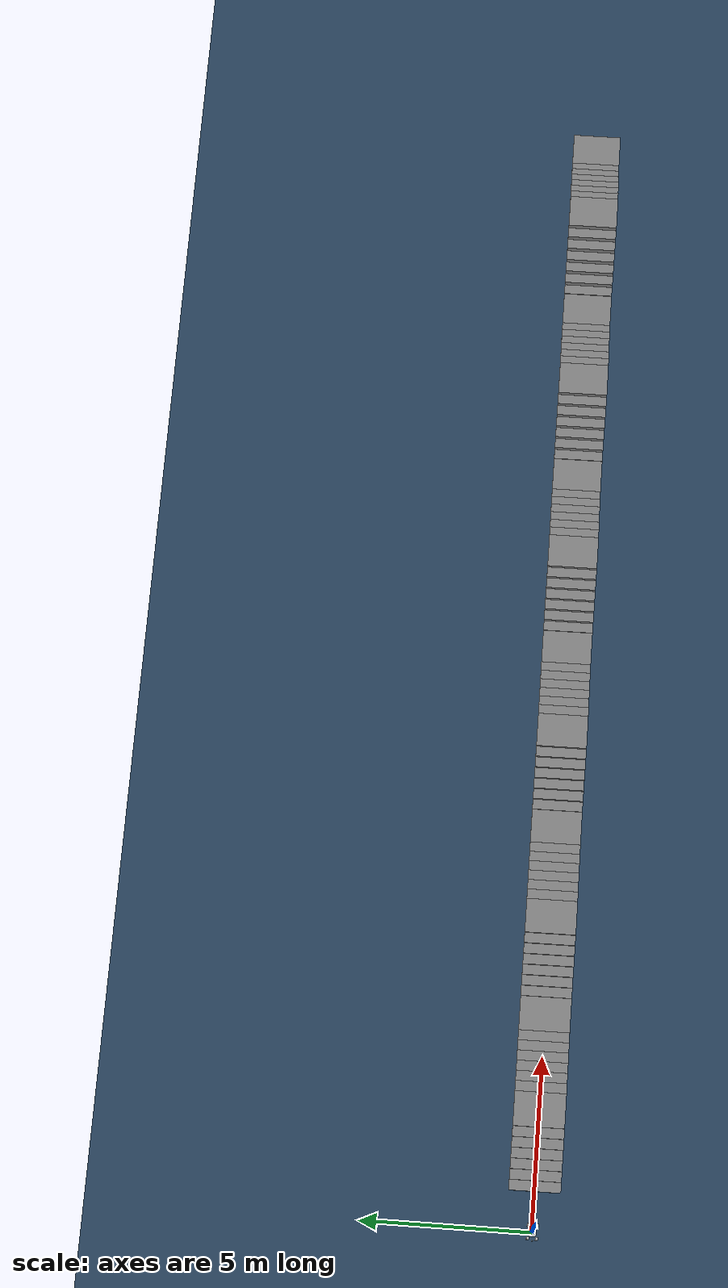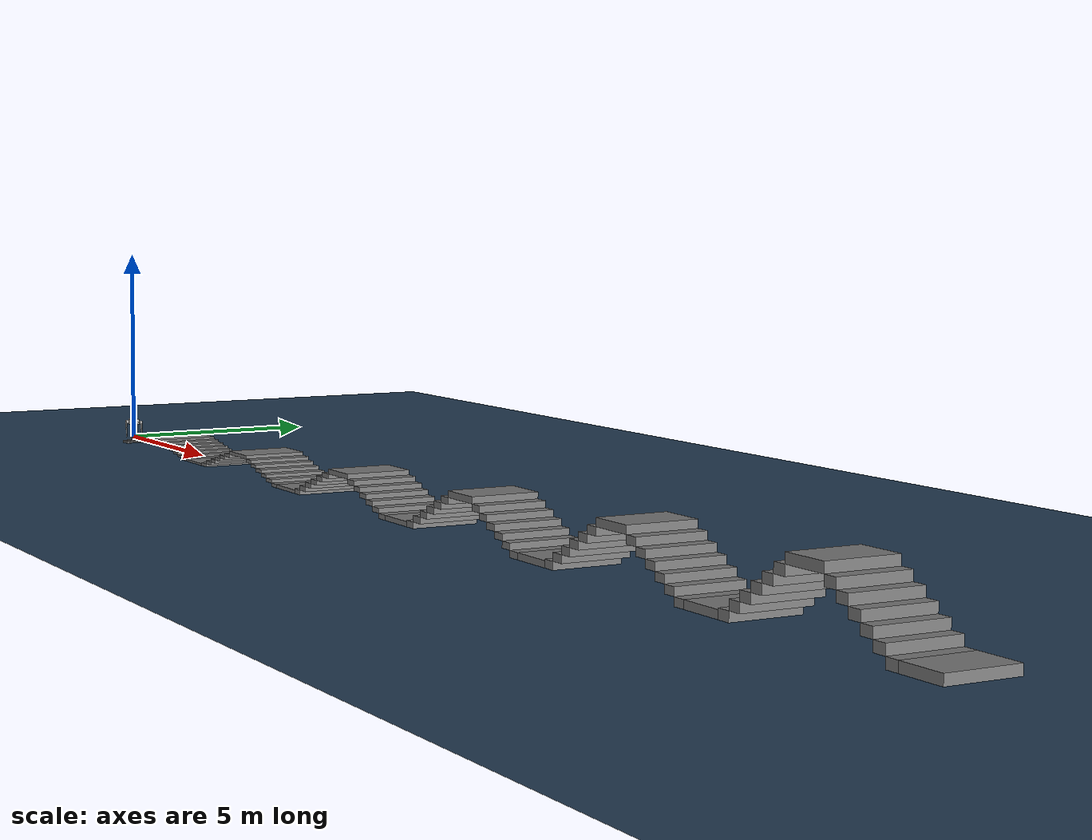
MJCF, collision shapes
<mujoco model="stairs">
  <include file="legbot.xml"/>

  <statistic center="0 0 0.1" extent="0.8"/>

  <visual>
    <headlight diffuse="0.6 0.6 0.6" ambient="0.3 0.3 0.3" specular="0 0 0"/>
    <rgba haze="0.15 0.25 0.35 1"/>
    <global azimuth="-130" elevation="-20"/>
  </visual>
  <default>
    <geom friction="1.0 0.005 0.0001" contype="1" conaffinity="1" condim="3" solref="0.02 1"/>
  </default>

  <asset>
    <texture type="skybox" builtin="gradient" rgb1="0.3 0.5 0.7" rgb2="0 0 0" width="512" height="3072"/>
    <texture type="2d" name="groundplane" builtin="checker" mark="edge" rgb1="0.2 0.3 0.4" rgb2="0.1 0.2 0.3" markrgb="0.8 0.8 0.8" width="300" height="300"/>
    <material name="groundplane" texture="groundplane" texuniform="true" texrepeat="5 5" reflectance="0.2"/>
  </asset>

  <worldbody>
    <light pos="0 0 1.5" dir="0 0 -1" directional="true"/>
    <geom name="floor" size="0 0 0.05" type="plane" material="groundplane"
          friction="1.0 0.005 0.0001" contype="1" conaffinity="1" condim="3" solref="0.02 1"/>

    <!-- Staircase: progressively steeper sections (2.5cm → 10cm step height) -->
    <geom pos="1.3 0.0 0.025" type="box" size="0.15 0.75 0.025"/>
    <geom pos="1.6 0.0 0.075" type="box" size="0.15 0.75 0.025"/>
    <geom pos="1.9 0.0 0.125" type="box" size="0.15 0.75 0.025"/>
    <geom pos="2.2 0.0 0.175" type="box" size="0.15 0.75 0.025"/>
    <geom pos="2.5 0.0 0.225" type="box" size="0.15 0.75 0.025"/>
    <geom pos="2.8 0.0 0.275" type="box" size="0.15 0.75 0.025"/>
    <geom pos="3.45 0.0 0.325" type="box" size="0.5 0.75 0.025"/>
    <geom pos="4.1 0.0 0.275" type="box" size="0.15 0.75 0.025"/>
    <geom pos="4.4 0.0 0.225" type="box" size="0.15 0.75 0.025"/>
    <geom pos="4.7 0.0 0.175" type="box" size="0.15 0.75 0.025"/>
    <geom pos="5.0 0.0 0.125" type="box" size="0.15 0.75 0.025"/>
    <geom pos="5.3 0.0 0.075" type="box" size="0.15 0.75 0.025"/>
    <geom pos="5.6 0.0 0.025" type="box" size="0.15 0.75 0.025"/>
    <geom pos="6.25 0.0 0.025" type="box" size="0.5 0.75 0.025"/>

    <!-- 4cm steps -->
    <geom pos="6.9 0.0 0.04" type="box" size="0.15 0.75 0.04"/>
    <geom pos="7.2 0.0 0.12" type="box" size="0.15 0.75 0.04"/>
    <geom pos="7.5 0.0 0.2" type="box" size="0.15 0.75 0.04"/>
    <geom pos="7.8 0.0 0.28" type="box" size="0.15 0.75 0.04"/>
    <geom pos="8.1 0.0 0.36" type="box" size="0.15 0.75 0.04"/>
    <geom pos="8.4 0.0 0.44" type="box" size="0.15 0.75 0.04"/>
    <geom pos="9.05 0.0 0.52" type="box" size="0.5 0.75 0.04"/>
    <geom pos="9.7 0.0 0.44" type="box" size="0.15 0.75 0.04"/>
    <geom pos="10.0 0.0 0.36" type="box" size="0.15 0.75 0.04"/>
    <geom pos="10.3 0.0 0.28" type="box" size="0.15 0.75 0.04"/>
    <geom pos="10.6 0.0 0.2" type="box" size="0.15 0.75 0.04"/>
    <geom pos="10.9 0.0 0.12" type="box" size="0.15 0.75 0.04"/>
    <geom pos="11.2 0.0 0.04" type="box" size="0.15 0.75 0.04"/>
    <geom pos="11.85 0.0 0.04" type="box" size="0.5 0.75 0.04"/>

    <!-- 5.5cm steps -->
    <geom pos="12.5 0.0 0.055" type="box" size="0.15 0.75 0.055"/>
    <geom pos="12.8 0.0 0.165" type="box" size="0.15 0.75 0.055"/>
    <geom pos="13.1 0.0 0.275" type="box" size="0.15 0.75 0.055"/>
    <geom pos="13.4 0.0 0.385" type="box" size="0.15 0.75 0.055"/>
    <geom pos="13.7 0.0 0.495" type="box" size="0.15 0.75 0.055"/>
    <geom pos="14.0 0.0 0.605" type="box" size="0.15 0.75 0.055"/>
    <geom pos="14.65 0.0 0.715" type="box" size="0.5 0.75 0.055"/>
    <geom pos="15.3 0.0 0.605" type="box" size="0.15 0.75 0.055"/>
    <geom pos="15.6 0.0 0.495" type="box" size="0.15 0.75 0.055"/>
    <geom pos="15.9 0.0 0.385" type="box" size="0.15 0.75 0.055"/>
    <geom pos="16.2 0.0 0.275" type="box" size="0.15 0.75 0.055"/>
    <geom pos="16.5 0.0 0.165" type="box" size="0.15 0.75 0.055"/>
    <geom pos="16.8 0.0 0.055" type="box" size="0.15 0.75 0.055"/>
    <geom pos="17.45 0.0 0.055" type="box" size="0.5 0.75 0.055"/>

    <!-- 7cm steps -->
    <geom pos="18.1 0.0 0.07" type="box" size="0.15 0.75 0.07"/>
    <geom pos="18.4 0.0 0.21" type="box" size="0.15 0.75 0.07"/>
    <geom pos="18.7 0.0 0.35" type="box" size="0.15 0.75 0.07"/>
    <geom pos="19.0 0.0 0.49" type="box" size="0.15 0.75 0.07"/>
    <geom pos="19.3 0.0 0.63" type="box" size="0.15 0.75 0.07"/>
    <geom pos="19.6 0.0 0.77" type="box" size="0.15 0.75 0.07"/>
    <geom pos="20.25 0.0 0.91" type="box" size="0.5 0.75 0.07"/>
    <geom pos="20.9 0.0 0.77" type="box" size="0.15 0.75 0.07"/>
    <geom pos="21.2 0.0 0.63" type="box" size="0.15 0.75 0.07"/>
    <geom pos="21.5 0.0 0.49" type="box" size="0.15 0.75 0.07"/>
    <geom pos="21.8 0.0 0.35" type="box" size="0.15 0.75 0.07"/>
    <geom pos="22.1 0.0 0.21" type="box" size="0.15 0.75 0.07"/>
    <geom pos="22.4 0.0 0.07" type="box" size="0.15 0.75 0.07"/>
    <geom pos="23.05 0.0 0.07" type="box" size="0.5 0.75 0.07"/>

    <!-- 8.5cm steps -->
    <geom pos="23.7 0.0 0.085" type="box" size="0.15 0.75 0.085"/>
    <geom pos="24.0 0.0 0.255" type="box" size="0.15 0.75 0.085"/>
    <geom pos="24.3 0.0 0.425" type="box" size="0.15 0.75 0.085"/>
    <geom pos="24.6 0.0 0.595" type="box" size="0.15 0.75 0.085"/>
    <geom pos="24.9 0.0 0.765" type="box" size="0.15 0.75 0.085"/>
    <geom pos="25.2 0.0 0.935" type="box" size="0.15 0.75 0.085"/>
    <geom pos="25.85 0.0 1.105" type="box" size="0.5 0.75 0.085"/>
    <geom pos="26.5 0.0 0.935" type="box" size="0.15 0.75 0.085"/>
    <geom pos="26.8 0.0 0.765" type="box" size="0.15 0.75 0.085"/>
    <geom pos="27.1 0.0 0.595" type="box" size="0.15 0.75 0.085"/>
    <geom pos="27.4 0.0 0.425" type="box" size="0.15 0.75 0.085"/>
    <geom pos="27.7 0.0 0.255" type="box" size="0.15 0.75 0.085"/>
    <geom pos="28.0 0.0 0.085" type="box" size="0.15 0.75 0.085"/>
    <geom pos="28.65 0.0 0.085" type="box" size="0.5 0.75 0.085"/>

    <!-- 10cm steps -->
    <geom pos="29.3 0.0 0.1" type="box" size="0.15 0.75 0.1"/>
    <geom pos="29.6 0.0 0.3" type="box" size="0.15 0.75 0.1"/>
    <geom pos="29.9 0.0 0.5" type="box" size="0.15 0.75 0.1"/>
    <geom pos="30.2 0.0 0.7" type="box" size="0.15 0.75 0.1"/>
    <geom pos="30.5 0.0 0.9" type="box" size="0.15 0.75 0.1"/>
    <geom pos="30.8 0.0 1.1" type="box" size="0.15 0.75 0.1"/>
    <geom pos="31.45 0.0 1.3" type="box" size="0.5 0.75 0.1"/>
    <geom pos="32.1 0.0 1.1" type="box" size="0.15 0.75 0.1"/>
    <geom pos="32.4 0.0 0.9" type="box" size="0.15 0.75 0.1"/>
    <geom pos="32.7 0.0 0.7" type="box" size="0.15 0.75 0.1"/>
    <geom pos="33.0 0.0 0.5" type="box" size="0.15 0.75 0.1"/>
    <geom pos="33.3 0.0 0.3" type="box" size="0.15 0.75 0.1"/>
    <geom pos="33.6 0.0 0.1" type="box" size="0.15 0.75 0.1"/>
    <geom pos="34.25 0.0 0.1" type="box" size="0.5 0.75 0.1"/>
  </worldbody>
</mujoco>

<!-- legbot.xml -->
<mujoco model="legbot">
  <compiler angle="radian" meshdir="meshes/" />
  <option cone="elliptic" impratio="100" />
  <default>
    <material specular="0" shininess="0.25"/>
    <default class="vita">
      <geom friction="0.4" margin="0.001" condim="3" />
      <joint axis="0 1 0" damping="0.1" armature="0.0043" frictionloss="0.2" />
      <motor forcerange="-16 16" />
      <default class="R_hip_joint">
        <joint
                    axis="1 0 0"
                    range="-0.73304 0.73304"
                    actuatorfrcrange="-16 16"
                    limited="true"
                />
      </default>
      <default class="L_hip_joint">
        <joint
                    axis="1 0 0"
                    range="-0.73304 0.73304"
                    actuatorfrcrange="-16 16"
                    limited="true"
                />
      </default>
      <default class="F_thigh_joint">
        <joint range="-1.559 3.1298" actuatorfrcrange="-16 16" limited="true" />
      </default>
      <default class="R_thigh_joint">
        <joint
                    range="-0.51181 4.177"
                    actuatorfrcrange="-16 16"
                    limited="true"
                />
      </default>
      <default class="calf_joint">
        <joint
                    range="-2.6387 -0.7854"
                    actuatorfrcrange="-32 32"
                    limited="true"
                    damping="0.1"
                    armature="0.04"
                    frictionloss="0.2"
                />
        <motor forcerange="-32 32" />
      </default>
      <default class="visual">
        <geom type="mesh" contype="0" conaffinity="0" group="2" density="0" />
      </default>
      <default class="collision">
        <geom group="3" rgba="0.752941 0.752941 0.752941 1" />
        <default class="foot">
          <geom size="0.021" quat="0.707107 -0.707107 0 0" pos="0 0 0" />
        </default>
      </default>
    </default>
  </default>
  <asset>
    <mesh name="base_link" file="base_link.STL" />
    <mesh name="FR_hip" file="FR_hip.STL" />
    <mesh name="FR_thigh" file="FR_thigh.STL" />
    <mesh name="FR_calf" file="FR_calf.STL" />
    <mesh name="FR_foot" file="FR_foot.STL" />
    <mesh name="FL_hip" file="FL_hip.STL" />
    <mesh name="FL_thigh" file="FL_thigh.STL" />
    <mesh name="FL_calf" file="FL_calf.STL" />
    <mesh name="FL_foot" file="FL_foot.STL" />
    <mesh name="RR_hip" file="RR_hip.STL" />
    <mesh name="RR_thigh" file="RR_thigh.STL" />
    <mesh name="RR_calf" file="RR_calf.STL" />
    <mesh name="RR_foot" file="RR_foot.STL" />
    <mesh name="RL_hip" file="RL_hip.STL" />
    <mesh name="RL_thigh" file="RL_thigh.STL" />
    <mesh name="RL_calf" file="RL_calf.STL" />
    <mesh name="RL_foot" file="RL_foot.STL" />
  </asset>
  <worldbody>
    <light name="spotlight" mode="targetbodycom" target="base" pos="0 -1 2" cutoff="30"/>

    <body name="base" pos="0 0 0.4" childclass="vita">
      <inertial
                pos="-0.005 0 0"
                mass="6.583964"
                fullinertia="0.044277 0.105409 0.091875 -0.000146 -0.024292 -0.000032"
            />
      <freejoint name="joint_fixed_world" />
      <site name="trunk_imu" pos="0 0 0" />
        <geom
                type="mesh"
                rgba="0.752941 0.752941 0.752941 1"
                mesh="base_link"
                class="visual"
            />
      <geom
                name="collision_middle_box"
                size="0.133329 0.101205 0.068913"
                pos="0 0 0.004583"
                type="box"
                class="collision"
            />
      <geom
                name="collision_front_dangban_box"
                size="0.0058255 0.029011 0.029011"
                pos="0.247938 0 0.006492"
                type="box"
                class="collision"
            />
      <geom
                name="collision_back_dangban_box"
                size="0.0058255 0.029011 0.023818"
                pos="-0.249278 0 0.006492"
                type="box"
                class="collision"
            />
      <geom
                name="collision_low_bar_FL_box"
                size="0.008 0.008 0.0065"
                pos="0.083 0.042 -0.086"
                type="box"
                class="collision"
            />
      <geom
                name="collision_low_bar_FR_box"
                size="0.008 0.008 0.0065"
                pos="0.083 -0.042 -0.086"
                type="box"
                class="collision"
            />
      <geom
                name="collision_low_bar_RL_box"
                size="0.008 0.008 0.0065"
                pos="-0.108 0.042 -0.086"
                type="box"
                class="collision"
            />
      <geom
                name="collision_low_bar_RR_box"
                size="0.008 0.008 0.0065"
                pos="-0.108 -0.042 -0.086"
                type="box"
                class="collision"
            />
      <body name="FR_hip" pos="0.18453 -0.051 0">
        <inertial
                    pos="-0.027882 0.015355 0"
                    quat="-0.137609 0.678417 0.233155 0.682973"
                    mass="0.079643"
                    diaginertia="8.72171e-05 7.7874e-05 2.29089e-05"
                />
        <joint name="FR_hip_joint" class="R_hip_joint" />
        <geom
                    type="mesh"
                    rgba="0.898039 0.917647 0.929412 1"
                    mesh="FR_hip"
                    class="visual"
                />
        <body name="FR_thigh" pos="0 -0.0975 0">
          <inertial
                        pos="-0.000498 0.038065 -0.024467"
                        quat="0.975282 -0.219111 0.024734 0.0142991"
                        mass="1.55038"
                        diaginertia="0.00679074 0.00586921 0.00204705"
                    />
          <joint name="FR_thigh_joint" class="F_thigh_joint" />
          <geom
                        type="mesh"
                        rgba="0.498039 0.498039 0.498039 1"
                        mesh="FR_thigh"
                        class="visual"
                    />
          <geom
                        name="collision_mainlink_box"
                        size="0.0129095 0.013 0.06282"
                        pos="-0.029488 -0.000724 -0.10287"
                        quat="0.999071 0 -0.0430946 0"
                        type="box"
                        class="collision"
                    />
          <geom
                        name="collision_self_check_box"
                        size="0.00126 0.013 0.0627725"
                        pos="0.01289 -0.000372 -0.102949"
                        quat="0.997989 0 0.063395 0"
                        type="box"
                        class="collision"
                    />
          <geom
                        name="collision_motor_cylinder"
                        size="0.044 0.038455"
                        pos="0 0.02351 -0.000177"
                        quat="-0.707107 0.707107 0 0"
                        type="cylinder"
                        class="collision"
                    />
          <geom
                        name="collision_revo_left_box"
                        size="0.015 0.002 0.02"
                        pos="-0.00614 0.014268 -0.188644"
                        quat="0.995396 0 -0.0958456 0"
                        type="box"
                        class="collision"
                    />
          <geom
                        name="collision_revo_right_box"
                        size="0.015 0.002 0.02"
                        pos="-0.00614 -0.014448 -0.188644"
                        quat="0.995396 0 -0.0958456 0"
                        type="box"
                        class="collision"
                    />
          <body name="FR_calf" pos="0 0 -0.1985">
            <inertial
                            pos="0.00261631 0 -0.125302"
                            quat="0.706944 -0.0151852 -0.0151852 0.706944"
                            mass="0.183986"
                            diaginertia="0.00125035 0.0012368 3.55485e-05"
                        />
            <joint name="FR_calf_joint" class="calf_joint" />
            <geom
                            type="mesh"
                            rgba="0.498039 0.498039 0.498039 1"
                            mesh="FR_calf"
                            class="visual"
                        />
            <geom
                            name="collision_upper_box"
                            size="0.012 0.007644 0.0242675"
                            pos="0.018049 0 -0.186508"
                            quat="0.998889 0 0.047125 0"
                            type="box"
                            class="collision"
                        />
            <geom
                            size="0.01 0.009 0.06"
                            pos="0.00376 0 -0.099894"
                            quat="0.994686 0 -0.102956 0"
                            type="box"
                            class="collision"
                        />
            <geom
                            name="collision_lower_box"
                            size="0.014 0.007644 0.02"
                            pos="-0.005451 0 -0.017378"
                            quat="0.999978 0 0.00661145 0"
                            type="box"
                            class="collision"
                        />
            <geom
                            name="collision_backprotect_box"
                            size="0.002 0.007644 0.02"
                            pos="-0.001309 0 -0.175631"
                            quat="0.981769 0 0.19008 0"
                            type="box"
                            class="collision"
                        />
            <geom
                            pos="0 0 -0.214"
                            quat="1 0 0 0"
                            type="mesh"
                            rgba="0.498039 0.498039 0.498039 1"
                            mesh="FR_foot"
                            class="visual"
                        />
            <body name="FR_foot" pos="0 0 -0.214">
              <geom class="foot" name="FR" />
            </body>
          </body>
        </body>
      </body>
      <body name="FL_hip" pos="0.18453 0.051 0">
        <inertial
                    pos="-0.027882 -0.015355 0"
                    quat="0.137609 0.678417 -0.233155 0.682973"
                    mass="0.079643"
                    diaginertia="8.72171e-05 7.7874e-05 2.29089e-05"
                />
        <joint name="FL_hip_joint" class="L_hip_joint" />
        <geom type="mesh" rgba="1 1 1 1" mesh="FL_hip" class="visual" />
        <body name="FL_thigh" pos="0 0.0975 0">
          <inertial
                        pos="-0.000498 -0.038065 -0.024467"
                        quat="0.975282 0.219111 0.024734 -0.0142991"
                        mass="1.55038"
                        diaginertia="0.00679074 0.00586921 0.00204705"
                    />
          <joint name="FL_thigh_joint" class="F_thigh_joint" />
          <geom
                        type="mesh"
                        rgba="0.498039 0.498039 0.498039 1"
                        mesh="FL_thigh"
                        class="visual"
                    />
          <geom
                        size="0.0129095 0.013 0.06282"
                        pos="-0.029488 0.000724 -0.10287"
                        quat="0.999071 0 -0.0430946 0"
                        type="box"
                        class="collision"
                    />
          <geom
                        size="0.00126 0.013 0.0627725"
                        pos="0.01289 0.000372 -0.102949"
                        quat="0.997989 0 0.063395 0"
                        type="box"
                        class="collision"
                    />
          <geom
                        size="0.044 0.038455"
                        pos="0 -0.02351 -0.000177"
                        quat="-0.707107 0.707107 0 0"
                        type="cylinder"
                        class="collision"
                    />
          <geom
                        size="0.015 0.002 0.02"
                        pos="-0.00614 -0.014268 -0.188644"
                        quat="0.995396 0 -0.0958456 0"
                        type="box"
                        class="collision"
                    />
          <geom
                        size="0.015 0.002 0.02"
                        pos="-0.00614 0.014448 -0.188644"
                        quat="0.995396 0 -0.0958456 0"
                        type="box"
                        class="collision"
                    />
          <body name="FL_calf" pos="0 0 -0.1985">
            <inertial
                            pos="0.00261631 0 -0.125302"
                            quat="0.706944 -0.0151852 -0.0151852 0.706944"
                            mass="0.183986"
                            diaginertia="0.00125035 0.0012368 3.55485e-05"
                        />
            <joint name="FL_calf_joint" class="calf_joint" />
            <geom
                            type="mesh"
                            rgba="0.498039 0.498039 0.498039 1"
                            mesh="FL_calf"
                            class="visual"
                        />
            <geom
                            size="0.012 0.007644 0.0242675"
                            pos="0.018049 0 -0.186508"
                            quat="0.998889 0 0.047125 0"
                            type="box"
                            class="collision"
                        />
            <geom
                            size="0.01 0.009 0.06"
                            pos="0.00376 0 -0.099894"
                            quat="0.994686 0 -0.102956 0"
                            type="box"
                            class="collision"
                        />
            <geom
                            size="0.014 0.007644 0.02"
                            pos="-0.005451 0 -0.017378"
                            quat="0.999978 0 0.00661145 0"
                            type="box"
                            class="collision"
                        />
            <geom
                            size="0.002 0.007644 0.02"
                            pos="-0.001309 0 -0.175631"
                            quat="0.981769 0 0.19008 0"
                            type="box"
                            class="collision"
                        />
            <geom
                            pos="0 0 -0.214"
                            quat="1 0 0 0"
                            type="mesh"
                            rgba="0.498039 0.498039 0.498039 1"
                            mesh="FL_foot"
                            class="visual"
                        />
            <body name="FL_foot" pos="0 0 -0.214">
              <geom class="foot" name="FL" />
            </body>
          </body>
        </body>
      </body>
      <body name="RR_hip" pos="-0.18453 -0.051 0">
        <inertial
                    pos="0.027882 0.015355 0"
                    quat="0.233155 0.682973 -0.137609 0.678417"
                    mass="0.079643"
                    diaginertia="8.72171e-05 7.7874e-05 2.29089e-05"
                />
        <joint name="RR_hip_joint" class="R_hip_joint" />
        <geom
                    type="mesh"
                    rgba="0.898039 0.917647 0.929412 1"
                    mesh="RR_hip"
                    class="visual"
                />
        <body name="RR_thigh" pos="0 -0.0975 0">
          <inertial
                        pos="-0.000498 0.038065 -0.024467"
                        quat="0.975282 -0.219111 0.024734 0.0142991"
                        mass="1.55038"
                        diaginertia="0.00679074 0.00586921 0.00204705"
                    />
          <joint name="RR_thigh_joint" class="R_thigh_joint" />
          <geom
                        type="mesh"
                        rgba="0.498039 0.498039 0.498039 1"
                        mesh="RR_thigh"
                        class="visual"
                    />
          <geom
                        size="0.0129095 0.013 0.06282"
                        pos="-0.029488 -0.000724 -0.10287"
                        quat="0.999071 0 -0.0430946 0"
                        type="box"
                        class="collision"
                    />
          <geom
                        size="0.00126 0.013 0.0627725"
                        pos="0.01289 -0.000372 -0.102949"
                        quat="0.997989 0 0.063395 0"
                        type="box"
                        class="collision"
                    />
          <geom
                        size="0.044 0.038455"
                        pos="0 0.02351 -0.000177"
                        quat="-0.707107 0.707107 0 0"
                        type="cylinder"
                        class="collision"
                    />
          <geom
                        size="0.015 0.002 0.02"
                        pos="-0.00614 0.014268 -0.188644"
                        quat="0.995396 0 -0.0958456 0"
                        type="box"
                        class="collision"
                    />
          <geom
                        size="0.015 0.002 0.02"
                        pos="-0.00614 -0.014448 -0.188644"
                        quat="0.995396 0 -0.0958456 0"
                        type="box"
                        class="collision"
                    />
          <body name="RR_calf" pos="0 0 -0.1985">
            <inertial
                            pos="0.00261631 0 -0.125302"
                            quat="0.706944 -0.0151852 -0.0151852 0.706944"
                            mass="0.183986"
                            diaginertia="0.00125035 0.0012368 3.55485e-05"
                        />
            <joint name="RR_calf_joint" class="calf_joint" />
            <geom
                            type="mesh"
                            rgba="0.498039 0.498039 0.498039 1"
                            mesh="RR_calf"
                            class="visual"
                        />
            <geom
                            size="0.012 0.007644 0.0242675"
                            pos="0.018049 0 -0.186508"
                            quat="0.998889 0 0.047125 0"
                            type="box"
                            class="collision"
                        />
            <geom
                            size="0.01 0.009 0.06"
                            pos="0.00376 0 -0.099894"
                            quat="0.994686 0 -0.102956 0"
                            type="box"
                            class="collision"
                        />
            <geom
                            size="0.014 0.007644 0.02"
                            pos="-0.005451 0 -0.017378"
                            quat="0.999978 0 0.00661145 0"
                            type="box"
                            class="collision"
                        />
            <geom
                            size="0.002 0.007644 0.02"
                            pos="-0.001309 0 -0.175631"
                            quat="0.981769 0 0.19008 0"
                            type="box"
                            class="collision"
                        />
            <geom
                            pos="0 0 -0.214"
                            quat="1 0 0 0"
                            type="mesh"
                            rgba="0.498039 0.498039 0.498039 1"
                            mesh="RR_foot"
                            class="visual"
                        />
            <body name="RR_foot" pos="0 0 -0.214">
              <geom class="foot" name="RR" />
            </body>
          </body>
        </body>
      </body>
      <body name="RL_hip" pos="-0.18453 0.051 0">
        <inertial
                    pos="0.027882 -0.015355 0"
                    quat="-0.233155 0.682973 0.137609 0.678417"
                    mass="0.079643"
                    diaginertia="8.72171e-05 7.7874e-05 2.29089e-05"
                />
        <joint name="RL_hip_joint" class="L_hip_joint" />
        <geom type="mesh" rgba="1 1 1 1" mesh="RL_hip" class="visual" />
        <body name="RL_thigh" pos="0 0.0975 0">
          <inertial
                        pos="-0.000498 -0.038065 -0.024467"
                        quat="0.975282 0.219111 0.024734 -0.0142991"
                        mass="1.55038"
                        diaginertia="0.00679074 0.00586921 0.00204705"
                    />
          <joint name="RL_thigh_joint" class="R_thigh_joint" />
          <geom
                        type="mesh"
                        rgba="0.498039 0.498039 0.498039 1"
                        mesh="RL_thigh"
                        class="visual"
                    />
          <geom
                        size="0.0129095 0.013 0.06282"
                        pos="-0.029488 0.000724 -0.10287"
                        quat="0.999071 0 -0.0430946 0"
                        type="box"
                        class="collision"
                    />
          <geom
                        size="0.00126 0.013 0.0627725"
                        pos="0.01289 0.000372 -0.102949"
                        quat="0.997989 0 0.063395 0"
                        type="box"
                        class="collision"
                    />
          <geom
                        size="0.044 0.038455"
                        pos="0 -0.02351 -0.000177"
                        quat="-0.707107 0.707107 0 0"
                        type="cylinder"
                        class="collision"
                    />
          <geom
                        size="0.015 0.002 0.02"
                        pos="-0.00614 -0.014268 -0.188644"
                        quat="0.995396 0 -0.0958456 0"
                        type="box"
                        class="collision"
                    />
          <geom
                        size="0.015 0.002 0.02"
                        pos="-0.00614 0.014448 -0.188644"
                        quat="0.995396 0 -0.0958456 0"
                        type="box"
                        class="collision"
                    />
          <body name="RL_calf" pos="0 0 -0.1985">
            <inertial
                            pos="0.00261631 0 -0.125302"
                            quat="0.706944 -0.0151852 -0.0151852 0.706944"
                            mass="0.183986"
                            diaginertia="0.00125035 0.0012368 3.55485e-05"
                        />
            <joint name="RL_calf_joint" class="calf_joint" />
            <geom
                            type="mesh"
                            rgba="0.498039 0.498039 0.498039 1"
                            mesh="RL_calf"
                            class="visual"
                        />
            <geom
                            size="0.012 0.007644 0.0242675"
                            pos="0.018049 0 -0.186508"
                            quat="0.998889 0 0.047125 0"
                            type="box"
                            class="collision"
                        />
            <geom
                            size="0.01 0.009 0.06"
                            pos="0.00376 0 -0.099894"
                            quat="0.994686 0 -0.102956 0"
                            type="box"
                            class="collision"
                        />
            <geom
                            size="0.014 0.007644 0.02"
                            pos="-0.005451 0 -0.017378"
                            quat="0.999978 0 0.00661145 0"
                            type="box"
                            class="collision"
                        />
            <geom
                            size="0.002 0.007644 0.02"
                            pos="-0.001309 0 -0.175631"
                            quat="0.981769 0 0.19008 0"
                            type="box"
                            class="collision"
                        />
            <geom
                            pos="0 0 -0.214"
                            quat="1 0 0 0"
                            type="mesh"
                            rgba="0.498039 0.498039 0.498039 1"
                            mesh="RL_foot"
                            class="visual"
                        />
            <body name="RL_foot" pos="0 0 -0.214">
              <geom class="foot" name="RL" />
            </body>
          </body>
        </body>
      </body>
    </body>
  </worldbody>
  <actuator>
    <!-- FR - 前右 -->
    <motor class="vita" name="FR_hip_joint" joint="FR_hip_joint" />
    <motor class="vita" name="FR_thigh_joint" joint="FR_thigh_joint" />
    <motor class="calf_joint" name="FR_calf_joint" joint="FR_calf_joint" />
    <!-- FL - 前左 -->
    <motor class="vita" name="FL_hip_joint" joint="FL_hip_joint" />
    <motor class="vita" name="FL_thigh_joint" joint="FL_thigh_joint" />
    <motor class="calf_joint" name="FL_calf_joint" joint="FL_calf_joint" />
    <!-- RR - 后右 -->
    <motor class="vita" name="RR_hip_joint" joint="RR_hip_joint" />
    <motor class="vita" name="RR_thigh_joint" joint="RR_thigh_joint" />
    <motor class="calf_joint" name="RR_calf_joint" joint="RR_calf_joint" />
    <!-- RL - 后左 -->
    <motor class="vita" name="RL_hip_joint" joint="RL_hip_joint" />
    <motor class="vita" name="RL_thigh_joint" joint="RL_thigh_joint" />
    <motor class="calf_joint" name="RL_calf_joint" joint="RL_calf_joint" />
  </actuator>
  <sensor>
    <!-- 关节位置传感器 - 按照与执行器相同的顺序排列 -->
    <!-- FR - 前右 -->
    <jointpos name="FR_hip_joint_pos" joint="FR_hip_joint" />
    <jointpos name="FR_thigh_joint_pos" joint="FR_thigh_joint" />
    <jointpos name="FR_calf_joint_pos" joint="FR_calf_joint" />
    <!-- FL - 前左 -->
    <jointpos name="FL_hip_joint_pos" joint="FL_hip_joint" />
    <jointpos name="FL_thigh_joint_pos" joint="FL_thigh_joint" />
    <jointpos name="FL_calf_joint_pos" joint="FL_calf_joint" />
    <!-- RR - 后右 -->
    <jointpos name="RR_hip_joint_pos" joint="RR_hip_joint" />
    <jointpos name="RR_thigh_joint_pos" joint="RR_thigh_joint" />
    <jointpos name="RR_calf_joint_pos" joint="RR_calf_joint" />
    <!-- RL - 后左 -->
    <jointpos name="RL_hip_joint_pos" joint="RL_hip_joint" />
    <jointpos name="RL_thigh_joint_pos" joint="RL_thigh_joint" />
    <jointpos name="RL_calf_joint_pos" joint="RL_calf_joint" />
    <!-- 关节速度传感器 - 按照与执行器相同的顺序排列 -->
    <!-- FR - 前右 -->
    <jointvel name="FR_hip_joint_vel" joint="FR_hip_joint" />
    <jointvel name="FR_thigh_joint_vel" joint="FR_thigh_joint" />
    <jointvel name="FR_calf_joint_vel" joint="FR_calf_joint" />
    <!-- FL - 前左 -->
    <jointvel name="FL_hip_joint_vel" joint="FL_hip_joint" />
    <jointvel name="FL_thigh_joint_vel" joint="FL_thigh_joint" />
    <jointvel name="FL_calf_joint_vel" joint="FL_calf_joint" />
    <!-- RR - 后右 -->
    <jointvel name="RR_hip_joint_vel" joint="RR_hip_joint" />
    <jointvel name="RR_thigh_joint_vel" joint="RR_thigh_joint" />
    <jointvel name="RR_calf_joint_vel" joint="RR_calf_joint" />
    <!-- RL - 后左 -->
    <jointvel name="RL_hip_joint_vel" joint="RL_hip_joint" />
    <jointvel name="RL_thigh_joint_vel" joint="RL_thigh_joint" />
    <jointvel name="RL_calf_joint_vel" joint="RL_calf_joint" />
    <!-- 关节力矩传感器 - 按照与执行器相同的顺序排列 -->
    <!-- FR - 前右 -->
    <jointactuatorfrc
            name="FR_hip_joint_torque"
            joint="FR_hip_joint"
            noise="0.01"
        />
    <jointactuatorfrc
            name="FR_thigh_joint_torque"
            joint="FR_thigh_joint"
            noise="0.01"
        />
    <jointactuatorfrc
            name="FR_calf_joint_torque"
            joint="FR_calf_joint"
            noise="0.01"
        />
    <!-- FL - 前左 -->
    <jointactuatorfrc
            name="FL_hip_joint_torque"
            joint="FL_hip_joint"
            noise="0.01"
        />
    <jointactuatorfrc
            name="FL_thigh_joint_torque"
            joint="FL_thigh_joint"
            noise="0.01"
        />
    <jointactuatorfrc
            name="FL_calf_joint_torque"
            joint="FL_calf_joint"
            noise="0.01"
        />
    <!-- RR - 后右 -->
    <jointactuatorfrc
            name="RR_hip_joint_torque"
            joint="RR_hip_joint"
            noise="0.01"
        />
    <jointactuatorfrc
            name="RR_thigh_joint_torque"
            joint="RR_thigh_joint"
            noise="0.01"
        />
    <jointactuatorfrc
            name="RR_calf_joint_torque"
            joint="RR_calf_joint"
            noise="0.01"
        />
    <!-- RL - 后左 -->
    <jointactuatorfrc
            name="RL_hip_joint_torque"
            joint="RL_hip_joint"
            noise="0.01"
        />
    <jointactuatorfrc
            name="RL_thigh_joint_torque"
            joint="RL_thigh_joint"
            noise="0.01"
        />
    <jointactuatorfrc
            name="RL_calf_joint_torque"
            joint="RL_calf_joint"
            noise="0.01"
        />
    <!-- IMU传感器 -->
    <framequat name="trunk_quat" objtype="site" objname="trunk_imu" />
    <gyro name="base_gyro" site="trunk_imu" />
    <accelerometer name="trunk_acc" site="trunk_imu" />
    <!-- 位置和速度传感器 -->
    <framepos name="trunk_pos" objtype="site" objname="trunk_imu" />
    <framelinvel name="base_linvel" objtype="site" objname="trunk_imu" />
  </sensor>
</mujoco>
